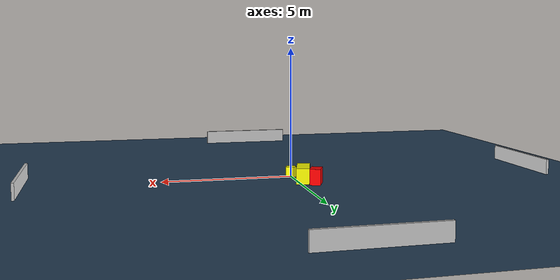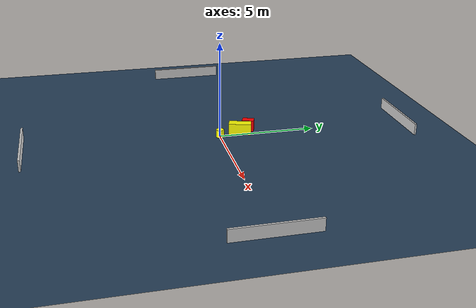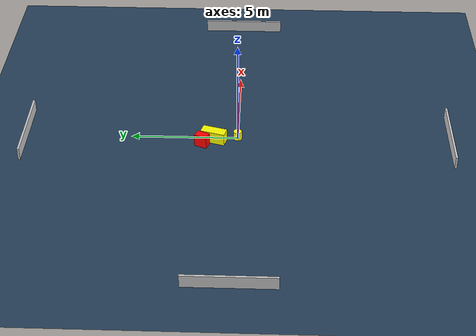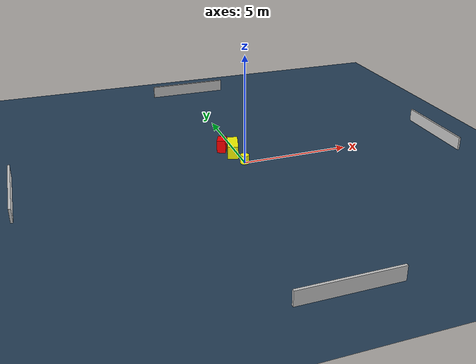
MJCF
<?xml version="1.0" ?>
<mujoco model="generated_environment">
  <option timestep="0.01" integrator="RK4" cone="elliptic"/>
  <default>
    <geom density="1"/>
  </default>
  <asset>
    <texture builtin="gradient" height="3072" name="skybox" rgb1="0.3 0.5 0.7" rgb2="0 0 0" type="skybox" width="512"/>
    <texture builtin="checker" height="300" name="groundplane" rgb1="0.2 0.3 0.4" rgb2="0.1 0.2 0.3" type="2d" width="300"/>
    <material name="groundplane" reflectance="0.2" texrepeat="5 5" texture="groundplane"/>
  </asset>
  <worldbody>
    <light dir="0 0 -1" directional="true" pos="0 0 1.5"/>
    <geom condim="3" friction="0.5 0.005 0.001" material="groundplane" name="floor" pos="0 0 0" size="0 0 0.05" type="plane"/>
    <body name="walls">
      <geom name="wall_1" condim="4" pos="-10.0 0.0 0.3" rgba="0.800000011920929 0.800000011920929 0.800000011920929 1.0" size="0.05 2.0 0.3" type="box"/>
      <geom name="wall_2" condim="4" pos="10.0 0.0 0.3" rgba="0.800000011920929 0.800000011920929 0.800000011920929 1.0" size="0.05 2.0 0.3" type="box"/>
      <geom name="wall_3" condim="4" pos="0.0 -10.0 0.3" rgba="0.800000011920929 0.800000011920929 0.800000011920929 1.0" size="2.0 0.05 0.3" type="box"/>
      <geom name="wall_4" condim="4" pos="0.0 10.0 0.3" rgba="0.800000011920929 0.800000011920929 0.800000011920929 1.0" size="2.0 0.05 0.3" type="box"/>
    </body>
    <body name="robot">
      <joint name="joint_x" type="slide" pos="0 0 0" axis="1 0 0"/>
      <joint name="joint_y" type="slide" pos="0 0 0" axis="0 1 0"/>
      <geom name="robot" type="cylinder" pos="0.0 0.0 0.2" size="0.2 0.2 0.0" mass="5.0" friction="1.0 0.005 0.0001" condim="4" rgba="1.0 1.0 0.0 1.0"/>
    </body>
    <body name="obstacle_1_movable">
      <geom name="obstacle_1_movable" condim="4" pos="-0.2042317934152552 1.1146447978955831 0.3" euler="0 0 343.76996298025034" friction="0.0 0.005 0.001" rgba="1.0 1.0 0.0 1.0" size="0.2432538352353792 0.580502187534373 0.3" type="box" mass="0.1"/>
      <joint type="free"/>
    </body>
    <body name="obstacle_2_static">
      <geom name="obstacle_2_static" condim="4" pos="-0.5585849657723082 1.6484353637720044 0.3" euler="0 0 156.49282271094668" friction="0.0 0.005 0.001" rgba="1.0 0.0 0.0 1.0" size="0.20104194601419062 0.3041944865641618 0.3" type="box"/>
    </body>
  </worldbody>
  <actuator>
    <motor name="actuator_x" joint="joint_x" gear="1" ctrlrange="-1 1"/>
    <motor name="actuator_y" joint="joint_y" gear="1" ctrlrange="-1 1"/>
  </actuator>
</mujoco>
